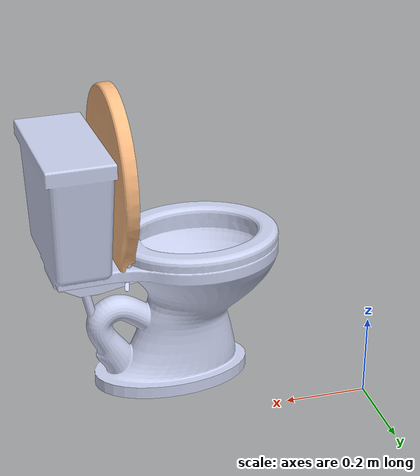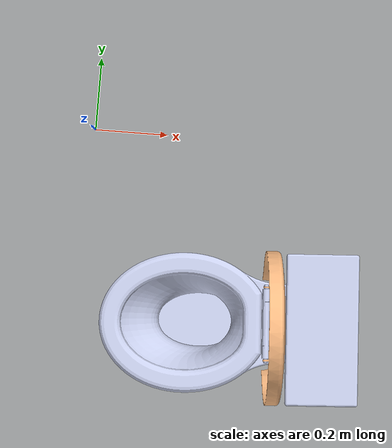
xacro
<?xml version="1.0" encoding="utf-8"?>
<robot
  xmlns:xacro="http://ros.org/wiki/xacro"
  name="toilet_urdf">
  <link name="world"/>
  <link name="toilet_virtual"/>
  <joint name="toilet_virtual_joint" type="fixed">
    <parent link="toilet_virtual"/>
    <child link="toilet_base"/>
  </joint>
  <joint name="world_joint" type="fixed">
    <origin xyz="0.5 -0.5 -0.2" rpy="0 0 -1.51"/>
    <parent link="world"/>
    <child link="toilet_virtual"/>
  </joint>
  <link
    name="toilet_base">
    <inertial>
      <origin
        xyz="-0.0022188 -0.077174 0.28987"
        rpy="0 0 0" />
      <mass
        value="15.916" />
      <inertia
        ixx="0.62837"
        ixy="-0.001174"
        ixz="-0.00021831"
        iyy="0.41311"
        iyz="-0.047911"
        izz="0.46425" />
    </inertial>
    <visual>
      <origin
        xyz="0 0 0"
        rpy="0 0 0" />
      <geometry>
        <mesh
          filename="package://toilet_urdf/meshes/base_link.STL" />
      </geometry>
      <material
        name="">
        <color
          rgba="0.79608 0.82353 0.93725 1" />
      </material>
    </visual>
    <collision>
      <origin
        xyz="0 0 0"
        rpy="0 0 0" />
      <geometry>
        <mesh
          filename="package://toilet_urdf/meshes/base_link.STL" />
      </geometry>
    </collision>
  </link>
  <link
    name="toilet_shaft_link">
    <inertial>
      <origin
        xyz="1.6914E-17 5.5511E-17 1.7347E-18"
        rpy="0 0 0" />
      <mass
        value="0.023616" />
      <inertia
        ixx="4.2361E-07"
        ixy="-8.5674E-39"
        ixz="9.2644E-23"
        iyy="8.6036E-05"
        iyz="-1.7001E-40"
        izz="8.6036E-05" />
    </inertial>
    <visual>
      <origin
        xyz="0 0 0"
        rpy="0 0 0" />
      <geometry>
        <mesh
          filename="package://toilet_urdf/meshes/toilet_shaft_link.STL" />
      </geometry>
      <material
        name="">
        <color
          rgba="0.79608 0.82353 0.93725 1" />
      </material>
    </visual>
    <collision>
      <origin
        xyz="0 0 0"
        rpy="0 0 0" />
      <geometry>
        <mesh
          filename="package://toilet_urdf/meshes/toilet_shaft_link.STL" />
      </geometry>
    </collision>
  </link>
  <joint
    name="toiley_shaft_joint"
    type="fixed">
    <origin
      xyz="-0.003 0.0115 0.4165"
      rpy="1.5708 0 0" />
    <parent
      link="toilet_base" />
    <child
      link="toilet_shaft_link" />
    <axis
      xyz="0 0 0" />
  </joint>
  <link
    name="toilet_cover_link">
    <inertial>
      <origin
        xyz="0.0029453 0.22576 -0.02496"
        rpy="0 0 0" />
      <mass
        value="0.4649" />
      <inertia
        ixx="0.0076253"
        ixy="-2.4085E-06"
        ixz="1.5042E-07"
        iyy="0.0057384"
        iyz="9.3507E-05"
        izz="0.013289" />
    </inertial>
    <visual>
      <origin
        xyz="0 0 0"
        rpy="0 0 0" />
      <geometry>
        <mesh
          filename="package://toilet_urdf/meshes/toilet_cover_link.STL" />
      </geometry>
      <material
        name="">
        <color
          rgba="0.98824 0.73725 0.51765 1" />
      </material>
    </visual>
    <collision>
      <origin
        xyz="0 0 0"
        rpy="0 0 0" />
      <geometry>
        <mesh
          filename="package://toilet_urdf/meshes/toilet_cover_link.STL" />
      </geometry>
    </collision>
  </link>
  <joint
    name="toilet_cover_joint"
    type="revolute">
    <origin
      xyz="0 0 0"
      rpy="0 0 0" />
    <parent
      link="toilet_shaft_link" />
    <child
      link="toilet_cover_link" />
    <axis
      xyz="-1 0 0" />
    <limit
      lower="-1.57"
      upper="0"
      effort="1000"
      velocity="0" />
  </joint>
</robot>
